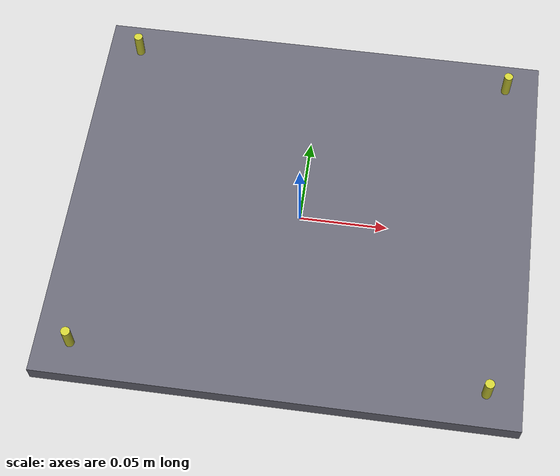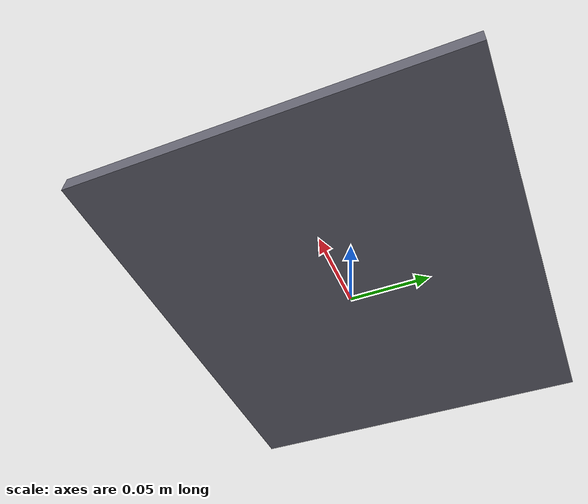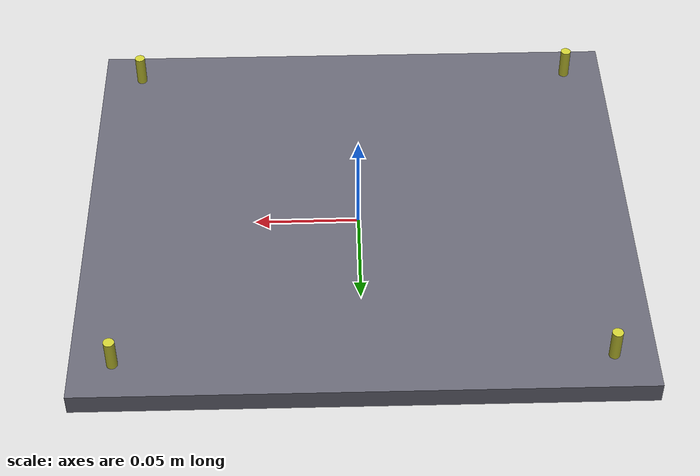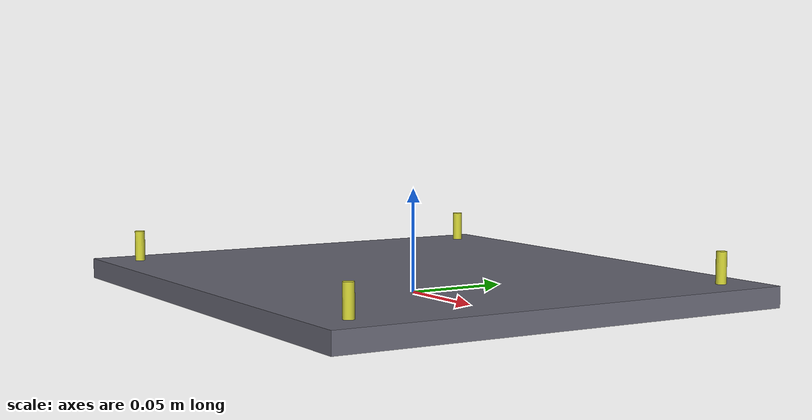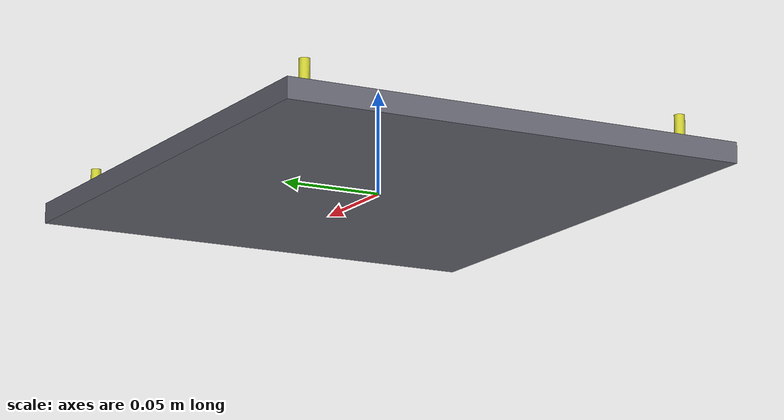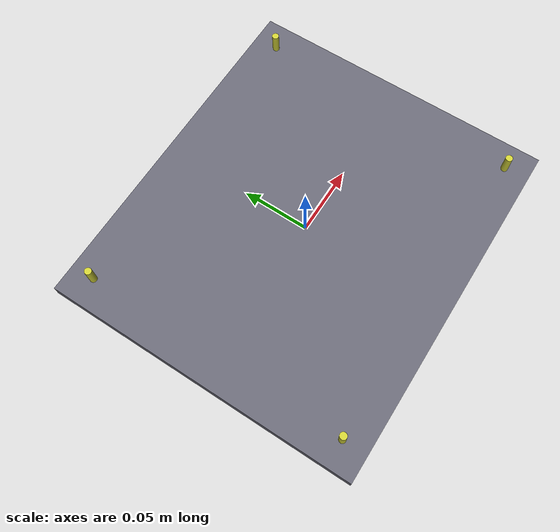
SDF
<?xml version="1.0"?>
<sdf version="1.9">
  <model name="frame_jig">
    <static>true</static>

    <!-- Base plate: 260x230x10mm. Pose lifts it so its bottom sits at z=0
         in the model's local frame. -->
    <link name="base">
      <pose>0 0 0.005 0 0 0</pose>
      <visual name="base_visual">
        <geometry>
          <box>
            <size>0.260 0.230 0.010</size>
          </box>
        </geometry>
        <material>
          <ambient>0.3 0.3 0.35 1</ambient>
          <diffuse>0.4 0.4 0.45 1</diffuse>
        </material>
      </visual>
      <collision name="base_collision">
        <geometry>
          <box>
            <size>0.260 0.230 0.010</size>
          </box>
        </geometry>
      </collision>
    </link>

    <!-- Locating pegs at motor-mount center holes of each arm tip.
         z = 0.010 (top of base) + 0.0075 (half peg height) = 0.0175.
         Coordinates from real CAD measurements. -->
    <link name="peg_front_left">
      <pose>-0.110715 0.096902 0.0175 0 0 0</pose>
      <visual name="visual">
        <geometry>
          <cylinder>
            <radius>0.0025</radius>
            <length>0.015</length>
          </cylinder>
        </geometry>
        <material>
          <ambient>0.6 0.6 0.1 1</ambient>
          <diffuse>0.8 0.8 0.2 1</diffuse>
        </material>
      </visual>
      <collision name="collision">
        <geometry>
          <cylinder>
            <radius>0.0025</radius>
            <length>0.015</length>
          </cylinder>
        </geometry>
      </collision>
    </link>

    <link name="peg_front_right">
      <pose>0.110715 0.096902 0.0175 0 0 0</pose>
      <visual name="visual">
        <geometry>
          <cylinder>
            <radius>0.0025</radius>
            <length>0.015</length>
          </cylinder>
        </geometry>
        <material>
          <ambient>0.6 0.6 0.1 1</ambient>
          <diffuse>0.8 0.8 0.2 1</diffuse>
        </material>
      </visual>
      <collision name="collision">
        <geometry>
          <cylinder>
            <radius>0.0025</radius>
            <length>0.015</length>
          </cylinder>
        </geometry>
      </collision>
    </link>

    <link name="peg_back_left">
      <pose>-0.110715 -0.096902 0.0175 0 0 0</pose>
      <visual name="visual">
        <geometry>
          <cylinder>
            <radius>0.0025</radius>
            <length>0.015</length>
          </cylinder>
        </geometry>
        <material>
          <ambient>0.6 0.6 0.1 1</ambient>
          <diffuse>0.8 0.8 0.2 1</diffuse>
        </material>
      </visual>
      <collision name="collision">
        <geometry>
          <cylinder>
            <radius>0.0025</radius>
            <length>0.015</length>
          </cylinder>
        </geometry>
      </collision>
    </link>

    <link name="peg_back_right">
      <pose>0.110715 -0.096902 0.0175 0 0 0</pose>
      <visual name="visual">
        <geometry>
          <cylinder>
            <radius>0.0025</radius>
            <length>0.015</length>
          </cylinder>
        </geometry>
        <material>
          <ambient>0.6 0.6 0.1 1</ambient>
          <diffuse>0.8 0.8 0.2 1</diffuse>
        </material>
      </visual>
      <collision name="collision">
        <geometry>
          <cylinder>
            <radius>0.0025</radius>
            <length>0.015</length>
          </cylinder>
        </geometry>
      </collision>
    </link>

  </model>
</sdf>
